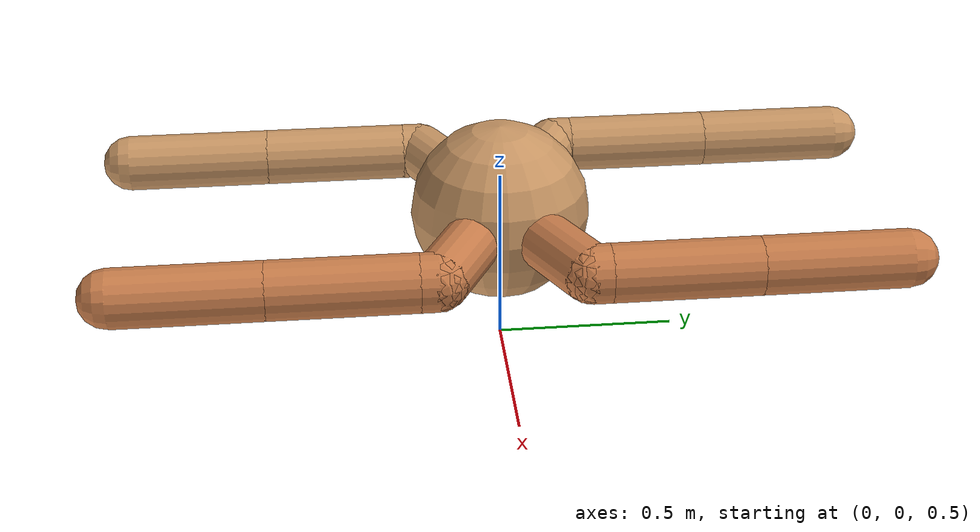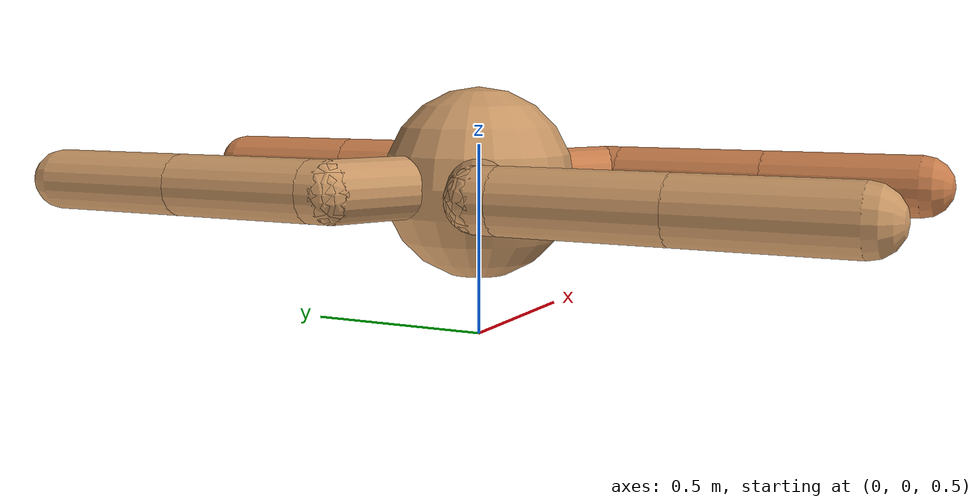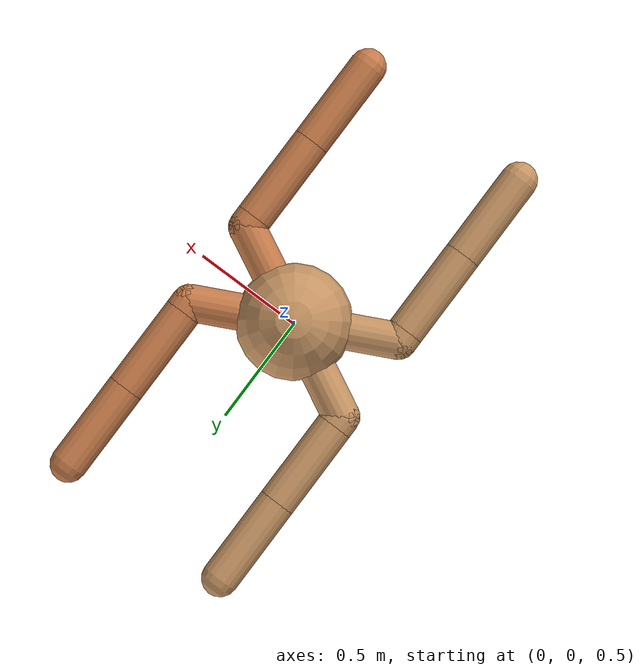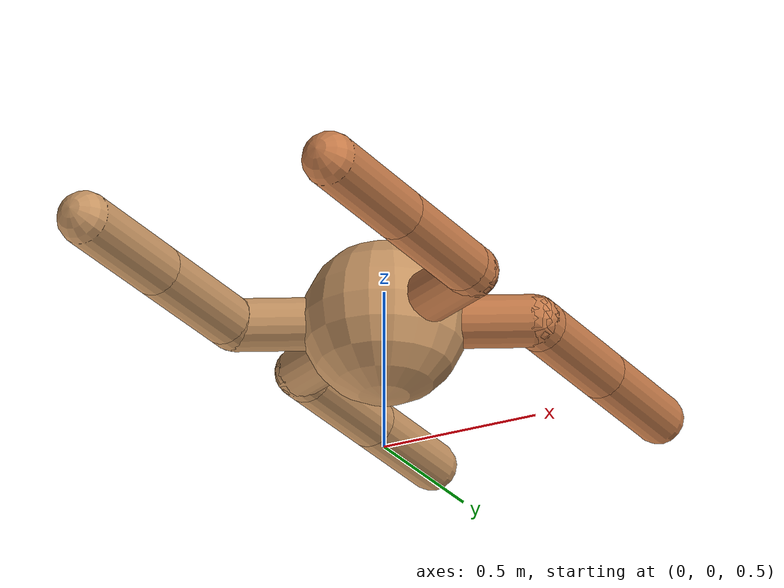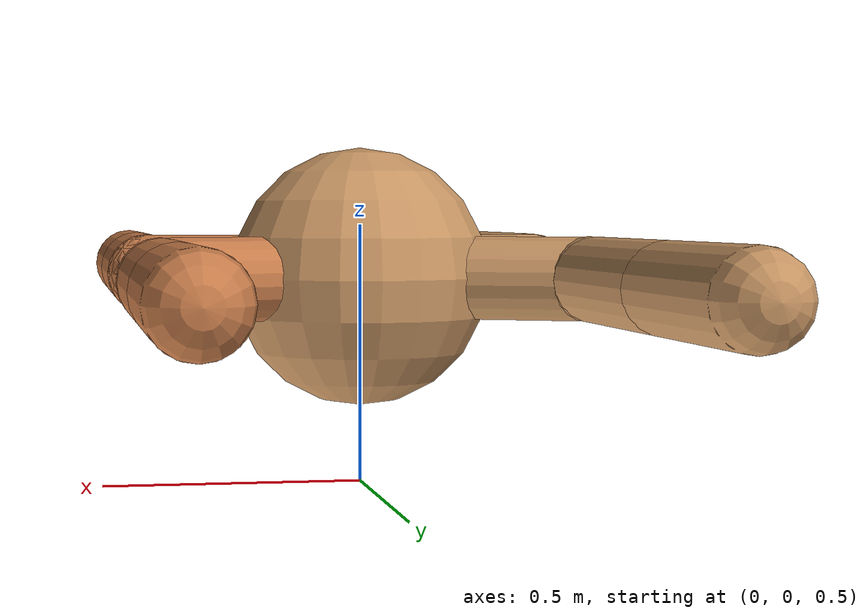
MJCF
<mujoco model="ant">
  <compiler angle="degree" coordinate="local" inertiafromgeom="true"/>
  <option integrator="RK4" timestep="0.01"/>
  <custom>
    <numeric data="0.0 0.0 0.55 1.0 0.0 0.0 0.0 0.0 1.0 0.0 -1.0 0.0 -1.0 0.0 1.0" name="init_qpos"/>
  </custom>
  <default>
    <joint armature="1" damping="1" limited="true"/>
    <geom conaffinity="0" condim="3" density="5.0" friction="1.5 0.1 0.1" margin="0.01" rgba="0.8 0.6 0.4 1"/>
  </default>
  <worldbody>
    <body name="torso" pos="0 0 0.9">
      <geom name="torso_geom" pos="0 0 0" size="0.25" type="sphere"/>
      <joint armature="0" damping="0" limited="false" margin="0.01" name="root" pos="0 0 0" type="free"/>
      <body name="front_left_leg" pos="0 0 0">
        <geom fromto="0.0 0.0 0.0 0.4 0.2 0.0" name="aux_1_geom" size="0.08" type="capsule" rgba=".8 .5 .3 1"/>
        <body name="aux_1" pos="0.4 0.2 0.0">
          <joint axis="0 1 0" name="hip_1" pos="0.0 0.0 0.0" range="-40 40" type="hinge"/>
          <geom fromto="0.0 0.0 0.0 0.0 0.05 0.0" name="left_leg_geom" size="0.08" type="capsule" rgba=".8 .5 .3 1"/>
          <body pos="0 0.05 0" name="front_left_foot">
            <joint axis="1 0 0" name="ankle_1" pos="0.0 0.0 0.0" range="30 100" type="hinge"/>
            <geom fromto="0.0 0.0 0.0 0.0 0.4 0.0" name="left_ankle_geom" size="0.08" type="capsule" rgba=".8 .5 .3 1"/>

	    <body pos="0 0.4 0" name="front_left_ext">
              <joint axis="1 0 0" name="ext_1" pos="0.0 0.0 0.0" range="-30 30" type="hinge"/>
              <geom fromto="0.0 0.0 0.0 0 0.4 0.0" name="left_ext_geom" size="0.08" type="capsule" rgba=".8 .5 .3 1"/>
            </body>

          </body>
        </body>
      </body>
      <body name="front_right_leg" pos="0 0 0">
        <geom fromto="0.0 0.0 0.0 -0.4 0.2 0.0" name="aux_2_geom" size="0.08" type="capsule"/>
        <body name="aux_2" pos="-0.4 0.2 0">
          <joint axis="0 1 0" name="hip_2" pos="0.0 0.0 0.0" range="-40 40" type="hinge"/>
          <geom fromto="0.0 0.0 0.0 0 0.05 0.0" name="right_leg_geom" size="0.08" type="capsule"/>
          <body pos="0 0.05 0" name="front_right_foot">
            <joint axis="1 0 0" name="ankle_2" pos="0.0 0.0 0.0" range="30 100" type="hinge"/>
            <geom fromto="0.0 0.0 0.0 0 0.4 0.0" name="right_ankle_geom" size="0.08" type="capsule"/>

	    <body pos="0 0.4 0" name="front_right_ext">
              <joint axis="1 0 0" name="ext_2" pos="0.0 0.0 0.0" range="-30 30" type="hinge"/>
              <geom fromto="0.0 0.0 0.0 0 0.4 0.0" name="right_ext_geom" size="0.08" type="capsule"/>
            </body>

          </body>
        </body>
      </body>
      <body name="left_back_leg" pos="0 0 0">
        <geom fromto="0.0 0.0 0.0 -0.4 -0.2 0.0" name="aux_3_geom" size="0.08" type="capsule"/>
        <body name="aux_3" pos="-0.4 -0.2 0">
          <joint axis="0 1 0" name="hip_3" pos="0.0 0.0 0.0" range="-40 40" type="hinge"/>
          <geom fromto="0.0 0.0 0.0 0 -0.05 0.0" name="back_leg_geom" size="0.08" type="capsule"/>
          <body pos="0 -0.05 0" name="left_back_foot">
            <joint axis="1 0 0" name="ankle_3" pos="0.0 0.0 0.0" range="30 100" type="hinge"/>
            <geom fromto="0.0 0.0 0.0 0 -0.4 0.0" name="third_ankle_geom" size="0.08" type="capsule"/>

	    <body pos="0 -0.4 0" name="left_back_ext">
              <joint axis="1 0 0" name="ext_3" pos="0.0 0.0 0.0" range="-30 30" type="hinge"/>
              <geom fromto="0.0 0.0 0.0 0 -0.4 0.0" name="left_ext_geom" size="0.08" type="capsule"/>
            </body>

          </body>
        </body>
      </body>
      <body name="right_back_leg" pos="0 0 0">
        <geom fromto="0.0 0.0 0.0 0.4 -0.2 0.0" name="aux_4_geom" size="0.08" type="capsule" rgba=".8 .5 .3 1"/>
        <body name="aux_4" pos="0.4 -0.2 0">
          <joint axis="0 1 0" name="hip_4" pos="0.0 0.0 0.0" range="-40 40" type="hinge"/>
          <geom fromto="0.0 0.0 0.0 0 -0.05 0.0" name="rightback_leg_geom" size="0.08" type="capsule" rgba=".8 .5 .3 1"/>
          <body pos="0 -0.05 0" name="right_back_foot">
            <joint axis="1 0 0" name="ankle_4" pos="0.0 0.0 0.0" range="30 100" type="hinge"/>
            <geom fromto="0.0 0.0 0.0 0 -0.4 0.0" name="fourth_ankle_geom" size="0.08" type="capsule" rgba=".8 .5 .3 1"/>

	    <body pos="0 -0.4 0" name="right_back_ext">
              <joint axis="1 0 0" name="ext_4" pos="0.0 0.0 0.0" range="-30 30" type="hinge"/>
              <geom fromto="0.0 0.0 0.0 0 -0.4 0.0" name="right_ext_geom" size="0.08" type="capsule" rgba=".8 .5 .3 1"/>
            </body>

          </body>
        </body>
      </body>
    </body>
  </worldbody>
  <actuator>
    <motor ctrllimited="true" ctrlrange="-1.0 1.0" joint="hip_4" gear="150"/>
    <motor ctrllimited="true" ctrlrange="-1.0 1.0" joint="ankle_4" gear="150"/>
    <motor ctrllimited="true" ctrlrange="-1.0 1.0" joint="hip_1" gear="150"/>
    <motor ctrllimited="true" ctrlrange="-1.0 1.0" joint="ankle_1" gear="150"/>
    <motor ctrllimited="true" ctrlrange="-1.0 1.0" joint="hip_2" gear="150"/>
    <motor ctrllimited="true" ctrlrange="-1.0 1.0" joint="ankle_2" gear="150"/>
    <motor ctrllimited="true" ctrlrange="-1.0 1.0" joint="hip_3" gear="150"/>
    <motor ctrllimited="true" ctrlrange="-1.0 1.0" joint="ankle_3" gear="150"/>
    <motor ctrllimited="true" ctrlrange="-1.0 1.0" joint="ext_1" gear="150"/>
  </actuator>
</mujoco>
